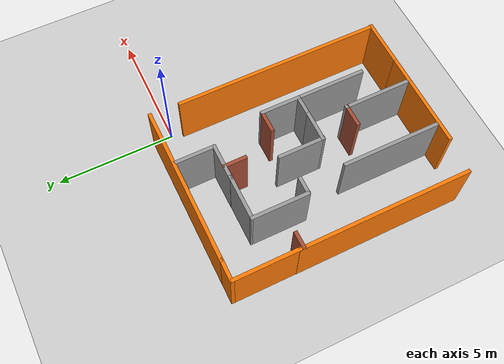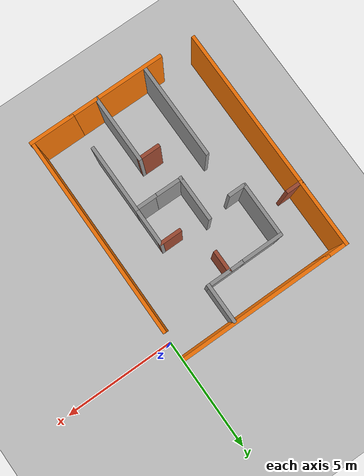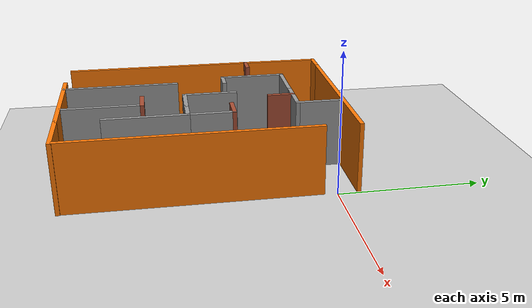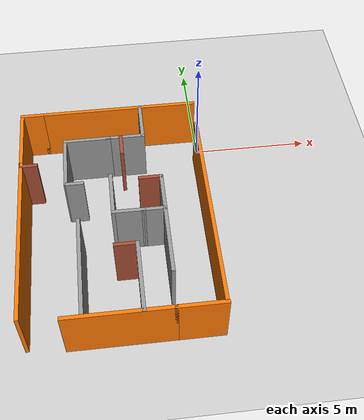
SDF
<sdf version="1.7">
 <world name="default">
  <light name="sun" type="directional">
   <pose>0 0 10 0 -0 0</pose>
   <diffuse>0.8 0.8 0.8 1</diffuse>
   <specular>0.2 0.2 0.2 1</specular>
   <attenuation>
    <range>1000</range>
    <constant>0.9</constant>
    <linear>0.01</linear>
    <quadratic>0.001</quadratic>
   </attenuation>
   <direction>-0.5 0.1 -0.9</direction>
   <spot><inner_angle>0</inner_angle><outer_angle>0</outer_angle><falloff>0</falloff></spot>
  </light>
  <model name="ground_plane">
   <static>1</static>
   <link name="link">
    <collision name="collision">
     <geometry><plane><normal>0 0 1</normal><size>100 100</size></plane></geometry>
     <surface><friction><ode><mu>100</mu><mu2>50</mu2></ode></friction></surface>
    </collision>
    <visual name="visual">
     <cast_shadows>0</cast_shadows>
     <geometry><plane><normal>0 0 1</normal><size>100 100</size></plane></geometry>
     <material>
      <script><uri>file://media/materials/scripts/gazebo.material</uri><name>Gazebo/Grey</name></script>
     </material>
    </visual>
   </link>
  </model>
  <gravity>0 0 -9.8</gravity>
  <magnetic_field>6e-06 2.3e-05 -4.2e-05</magnetic_field>
  <atmosphere type="adiabatic"/>
  <physics type="ode">
   <max_step_size>0.001</max_step_size>
   <real_time_factor>1</real_time_factor>
   <real_time_update_rate>1000</real_time_update_rate>
  </physics>
  <scene><ambient>0.4 0.4 0.4 1</ambient><background>0.7 0.7 0.7 1</background><shadows>1</shadows></scene>
  <spherical_coordinates>
   <surface_model>EARTH_WGS84</surface_model>
   <latitude_deg>0</latitude_deg>
   <longitude_deg>0</longitude_deg>
   <elevation>0</elevation>
   <heading_deg>0</heading_deg>
  </spherical_coordinates>
  <model name="Maze">
   <pose>-3.84878 -4.24266 0 0 -0 0</pose>
   <link name="Wall_21">
    <collision name="Wall_21_Collision">
     <geometry><box><size>4.25 0.15 2.5</size></box></geometry>
     <pose>0 0 1.25 0 -0 0</pose>
    </collision>
    <visual name="Wall_21_Visual">
     <pose>0 0 1.25 0 -0 0</pose>
     <geometry><box><size>4.25 0.15 2.5</size></box></geometry>
     <material>
      <script><uri>file://media/materials/scripts/gazebo.material</uri><name>Gazebo/Grey</name></script>
      <ambient>0.996078 0.47451 0.0196078 1</ambient>
     </material>
     <meta><layer>0</layer></meta>
    </visual>
    <pose>-0.166584 -4.99211 0 0 -0 0</pose>
   </link>
   <link name="Wall_23">
    <collision name="Wall_23_Collision">
     <geometry><box><size>4.25 0.15 2.5</size></box></geometry>
     <pose>0 0 1.25 0 -0 0</pose>
    </collision>
    <visual name="Wall_23_Visual">
     <pose>0 0 1.25 0 -0 0</pose>
     <geometry><box><size>4.25 0.15 2.5</size></box></geometry>
     <material>
      <script><uri>file://media/materials/scripts/gazebo.material</uri><name>Gazebo/Grey</name></script>
      <ambient>0 0 0 1</ambient>
     </material>
     <meta><layer>0</layer></meta>
    </visual>
    <pose>-1.47697 -2.88891 0 0 -0 1.5708</pose>
   </link>
   <link name="Wall_25">
    <collision name="Wall_25_Collision">
     <geometry><box><size>7.25 0.15 2.5</size></box></geometry>
     <pose>0 0 1.25 0 -0 0</pose>
    </collision>
    <visual name="Wall_25_Visual">
     <pose>0 0 1.25 0 -0 0</pose>
     <geometry><box><size>7.25 0.15 2.5</size></box></geometry>
     <material>
      <script><uri>file://media/materials/scripts/gazebo.material</uri><name>Gazebo/Grey</name></script>
      <ambient>0.996078 0.47451 0.0196078 1</ambient>
     </material>
     <meta><layer>0</layer></meta>
    </visual>
    <pose>-3.73341 -1.28759 0 0 -0 1.5708</pose>
   </link>
   <link name="Wall_30">
    <collision name="Wall_30_Collision">
     <geometry><box><size>0.75 0.15 2.5</size></box></geometry>
     <pose>0 0 1.25 0 -0 0</pose>
    </collision>
    <visual name="Wall_30_Visual">
     <pose>0 0 1.25 0 -0 0</pose>
     <geometry><box><size>0.75 0.15 2.5</size></box></geometry>
     <material>
      <script><uri>file://media/materials/scripts/gazebo.material</uri><name>Gazebo/Grey</name></script>
      <ambient>0 0 0 1</ambient>
     </material>
     <meta><layer>0</layer></meta>
    </visual>
    <pose>-1.56741 0.99221 0 0 -0 0</pose>
   </link>
   <link name="Wall_34">
    <collision name="Wall_34_Collision">
     <geometry><box><size>1.3428 0.15 2.5</size></box></geometry>
     <pose>0 0 1.25 0 -0 0</pose>
    </collision>
    <visual name="Wall_34_Visual">
     <pose>0 0 1.25 0 -0 0</pose>
     <geometry><box><size>1.3428 0.15 2.5</size></box></geometry>
     <material>
      <script><uri>file://media/materials/scripts/gazebo.material</uri><name>Gazebo/Grey</name></script>
      <ambient>0 0 0 1</ambient>
     </material>
     <meta><layer>0</layer></meta>
    </visual>
    <pose>0.487086 -0.59755 0 0 -0 -0.009643</pose>
   </link>
   <link name="Wall_35">
    <collision name="Wall_35_Collision">
     <geometry><box><size>1 0.15 2.5</size></box></geometry>
     <pose>0 0 1.25 0 -0 0</pose>
    </collision>
    <visual name="Wall_35_Visual">
     <pose>0 0 1.25 0 -0 0</pose>
     <geometry><box><size>1 0.15 2.5</size></box></geometry>
     <material>
      <script><uri>file://media/materials/scripts/gazebo.material</uri><name>Gazebo/Grey</name></script>
      <ambient>0 0 0 1</ambient>
     </material>
     <meta><layer>0</layer></meta>
    </visual>
    <pose>1.50837 -0.6033 0 0 -0 0</pose>
   </link>
   <link name="Wall_36">
    <collision name="Wall_36_Collision">
     <geometry><box><size>1.75 0.15 2.5</size></box></geometry>
     <pose>0 0 1.25 0 -0 0</pose>
    </collision>
    <visual name="Wall_36_Visual">
     <pose>0 0 1.25 0 -0 0</pose>
     <geometry><box><size>1.75 0.15 2.5</size></box></geometry>
     <material>
      <script><uri>file://media/materials/scripts/gazebo.material</uri><name>Gazebo/Grey</name></script>
      <ambient>0 0 0 1</ambient>
     </material>
     <meta><layer>0</layer></meta>
    </visual>
    <pose>1.93337 0.1967 0 0 -0 1.5708</pose>
   </link>
   <link name="Wall_37">
    <collision name="Wall_37_Collision">
     <geometry><box><size>1 0.15 2.5</size></box></geometry>
     <pose>0 0 1.25 0 -0 0</pose>
    </collision>
    <visual name="Wall_37_Visual">
     <pose>0 0 1.25 0 -0 0</pose>
     <geometry><box><size>1 0.15 2.5</size></box></geometry>
     <material>
      <script><uri>file://media/materials/scripts/gazebo.material</uri><name>Gazebo/Bricks</name></script>
      <ambient>0.435294 0.796078 0.67451 1</ambient>
     </material>
     <meta><layer>0</layer></meta>
    </visual>
    <pose>1.50837 0.9967 0 0 -0 3.14159</pose>
   </link>
   <link name="Wall_39">
    <collision name="Wall_39_Collision">
     <geometry><box><size>3 0.15 2.5</size></box></geometry>
     <pose>0 0 1.25 0 -0 0</pose>
    </collision>
    <visual name="Wall_39_Visual">
     <pose>0 0 1.25 0 -0 0</pose>
     <geometry><box><size>3 0.15 2.5</size></box></geometry>
     <material>
      <script><uri>file://media/materials/scripts/gazebo.material</uri><name>Gazebo/Grey</name></script>
      <ambient>0 0 0 1</ambient>
     </material>
     <meta><layer>0</layer></meta>
    </visual>
    <pose>1.93337 -2.0283 0 0 -0 -1.5708</pose>
   </link>
   <link name="Wall_41">
    <collision name="Wall_41_Collision">
     <geometry><box><size>3 0.15 2.5</size></box></geometry>
     <pose>0 0 1.25 0 -0 0</pose>
    </collision>
    <visual name="Wall_41_Visual">
     <pose>0 0 1.25 0 -0 0</pose>
     <geometry><box><size>3 0.15 2.5</size></box></geometry>
     <material>
      <script><uri>file://media/materials/scripts/gazebo.material</uri><name>Gazebo/Grey</name></script>
      <ambient>0 0 0 1</ambient>
     </material>
     <meta><layer>0</layer></meta>
    </visual>
    <pose>0.727679 -3.55281 0 0 -0 1.5708</pose>
   </link>
   <link name="Wall_43">
    <collision name="Wall_43_Collision">
     <geometry><box><size>1 0.15 2.5</size></box></geometry>
     <pose>0 0 1.25 0 -0 0</pose>
    </collision>
    <visual name="Wall_43_Visual">
     <pose>0 0 1.25 0 -0 0</pose>
     <geometry><box><size>1 0.15 2.5</size></box></geometry>
     <material>
      <script><uri>file://media/materials/scripts/gazebo.material</uri><name>Gazebo/Bricks</name></script>
      <ambient>0.435294 0.796078 0.67451 1</ambient>
     </material>
     <meta><layer>0</layer></meta>
    </visual>
    <pose>0.302679 -2.12782 0 0 -0 3.14159</pose>
   </link>
   <link name="Wall_46">
    <collision name="Wall_46_Collision">
     <geometry><box><size>1.64061 0.15 2.5</size></box></geometry>
     <pose>0 0 1.25 0 -0 0</pose>
    </collision>
    <visual name="Wall_46_Visual">
     <pose>0 0 1.25 0 -0 0</pose>
     <geometry><box><size>1.64061 0.15 2.5</size></box></geometry>
     <material>
      <script><uri>file://media/materials/scripts/gazebo.material</uri><name>Gazebo/Grey</name></script>
      <ambient>0 0 0 1</ambient>
     </material>
     <meta><layer>0</layer></meta>
    </visual>
    <pose>0.633461 3.31645 0 0 -0 0</pose>
   </link>
   <link name="Wall_52">
    <collision name="Wall_52_Collision">
     <geometry><box><size>2.44702 0.15 2.5</size></box></geometry>
     <pose>0 0 1.25 0 -0 0</pose>
    </collision>
    <visual name="Wall_52_Visual">
     <pose>0 0 1.25 0 -0 0</pose>
     <geometry><box><size>2.44702 0.15 2.5</size></box></geometry>
     <material>
      <script><uri>file://media/materials/scripts/gazebo.material</uri><name>Gazebo/Grey</name></script>
      <ambient>0 0 0 1</ambient>
     </material>
     <meta><layer>0</layer></meta>
    </visual>
    <pose>-1.91791 2.16081 0 0 -0 1.56844</pose>
   </link>
   <link name="Wall_53">
    <collision name="Wall_53_Collision">
     <geometry><box><size>2 0.15 2.5</size></box></geometry>
     <pose>0 0 1.25 0 -0 0</pose>
    </collision>
    <visual name="Wall_53_Visual">
     <pose>0 0 1.25 0 -0 0</pose>
     <geometry><box><size>2 0.15 2.5</size></box></geometry>
     <material>
      <script><uri>file://media/materials/scripts/gazebo.material</uri><name>Gazebo/Grey</name></script>
      <ambient>0 0 0 1</ambient>
     </material>
     <meta><layer>0</layer></meta>
    </visual>
    <pose>-0.99021 3.30921 0 0 -0 0</pose>
   </link>
   <link name="Wall_61">
    <collision name="Wall_61_Collision">
     <geometry><box><size>1 0.15 2.5</size></box></geometry>
     <pose>0 0 1.25 0 -0 0</pose>
    </collision>
    <visual name="Wall_61_Visual">
     <pose>0 0 1.25 0 -0 0</pose>
     <geometry><box><size>1 0.15 2.5</size></box></geometry>
     <material>
      <script><uri>file://media/materials/scripts/gazebo.material</uri><name>Gazebo/Grey</name></script>
      <ambient>0.996078 0.47451 0.0196078 1</ambient>
     </material>
     <meta><layer>0</layer></meta>
    </visual>
    <pose>-3.30144 4.99211 0 0 -0 3.14159</pose>
   </link>
   <link name="Wall_63">
    <collision name="Wall_63_Collision">
     <geometry><box><size>3 0.15 2.5</size></box></geometry>
     <pose>0 0 1.25 0 -0 0</pose>
    </collision>
    <visual name="Wall_63_Visual">
     <pose>0 0 1.25 0 -0 0</pose>
     <geometry><box><size>3 0.15 2.5</size></box></geometry>
     <material>
      <script><uri>file://media/materials/scripts/gazebo.material</uri><name>Gazebo/Grey</name></script>
      <ambient>0.996078 0.47451 0.0196078 1</ambient>
     </material>
     <meta><layer>0</layer></meta>
    </visual>
    <pose>-3.72644 3.56711 0 0 -0 -1.5708</pose>
   </link>
   <link name="Wall_65">
    <collision name="Wall_65_Collision">
     <geometry><box><size>6.75 0.15 2.5</size></box></geometry>
     <pose>0 0 1.25 0 -0 0</pose>
    </collision>
    <visual name="Wall_65_Visual">
     <pose>0 0 1.25 0 -0 0</pose>
     <geometry><box><size>6.75 0.15 2.5</size></box></geometry>
     <material>
      <script><uri>file://media/materials/scripts/gazebo.material</uri><name>Gazebo/Grey</name></script>
      <ambient>0.996078 0.47451 0.0196078 1</ambient>
     </material>
     <meta><layer>0</layer></meta>
    </visual>
    <pose>0.42356 4.99211 0 0 -0 0</pose>
   </link>
   <link name="Wall_67">
    <collision name="Wall_67_Collision">
     <geometry><box><size>8.75 0.15 2.5</size></box></geometry>
     <pose>0 0 1.25 0 -0 0</pose>
    </collision>
    <visual name="Wall_67_Visual">
     <pose>0 0 1.25 0 -0 0</pose>
     <geometry><box><size>8.75 0.15 2.5</size></box></geometry>
     <material>
      <script><uri>file://media/materials/scripts/gazebo.material</uri><name>Gazebo/Grey</name></script>
      <ambient>0.996078 0.47451 0.0196078 1</ambient>
     </material>
     <meta><layer>0</layer></meta>
    </visual>
    <pose>3.70855 -0.575644 0 0 -0 -1.5708</pose>
   </link>
   <link name="Wall_69">
    <collision name="Wall_69_Collision">
     <geometry><box><size>2 0.15 2.5</size></box></geometry>
     <pose>0 0 1.25 0 -0 0</pose>
    </collision>
    <visual name="Wall_69_Visual">
     <pose>0 0 1.25 0 -0 0</pose>
     <geometry><box><size>2 0.15 2.5</size></box></geometry>
     <material>
      <script><uri>file://media/materials/scripts/gazebo.material</uri><name>Gazebo/Grey</name></script>
      <ambient>0.996078 0.47451 0.0196078 1</ambient>
     </material>
     <meta><layer>0</layer></meta>
    </visual>
    <pose>2.80842 -4.99211 0 0 -0 0</pose>
   </link>
   <link name="Wall_71">
    <collision name="Wall_71_Collision">
     <geometry><box><size>0.75 0.15 2.5</size></box></geometry>
     <pose>0 0 1.25 0 -0 0</pose>
    </collision>
    <visual name="Wall_71_Visual">
     <pose>0 0 1.25 0 -0 0</pose>
     <geometry><box><size>0.75 0.15 2.5</size></box></geometry>
     <material>
      <script><uri>file://media/materials/scripts/gazebo.material</uri><name>Gazebo/Bricks</name></script>
      <ambient>0 0 0 1</ambient>
     </material>
     <meta><layer>0</layer></meta>
    </visual>
    <pose>-3.42644 2.14211 0 0 -0 0</pose>
   </link>
   <link name="Wall_73">
    <collision name="Wall_73_Collision">
     <geometry><box><size>2 0.15 2.5</size></box></geometry>
     <pose>0 0 1.25 0 -0 0</pose>
    </collision>
    <visual name="Wall_73_Visual">
     <pose>0 0 1.25 0 -0 0</pose>
     <geometry><box><size>2 0.15 2.5</size></box></geometry>
     <material>
      <script><uri>file://media/materials/scripts/gazebo.material</uri><name>Gazebo/Grey</name></script>
      <ambient>0 0 0 1</ambient>
     </material>
     <meta><layer>0</layer></meta>
    </visual>
    <pose>-0.109202 0.3217 0 0 -0 1.5708</pose>
   </link>
   <link name="Wall_79">
    <collision name="Wall_79_Collision">
     <geometry><box><size>1.75 0.15 2.5</size></box></geometry>
     <pose>0 0 1.25 0 -0 0</pose>
    </collision>
    <visual name="Wall_79_Visual">
     <pose>0 0 1.25 0 -0 0</pose>
     <geometry><box><size>1.75 0.15 2.5</size></box></geometry>
     <material>
      <script><uri>file://media/materials/scripts/gazebo.material</uri><name>Gazebo/Grey</name></script>
      <ambient>0 0 0 1</ambient>
     </material>
     <meta><layer>0</layer></meta>
    </visual>
    <pose>1.37874 4.11646 0 0 -0 1.5708</pose>
   </link>
   <link name="Wall_81">
    <collision name="Wall_81_Collision">
     <geometry><box><size>1 0.15 2.5</size></box></geometry>
     <pose>0 0 1.25 0 -0 0</pose>
    </collision>
    <visual name="Wall_81_Visual">
     <pose>0 0 1.25 0 -0 0</pose>
     <geometry><box><size>1 0.15 2.5</size></box></geometry>
     <material>
      <script><uri>file://media/materials/scripts/gazebo.material</uri><name>Gazebo/Bricks</name></script>
      <ambient>0.435294 0.796078 0.67451 1</ambient>
     </material>
     <meta><layer>0</layer></meta>
    </visual>
    <pose>0.438493 2.88286 0 0 -0 -1.5708</pose>
   </link>
   <static>1</static>
  </model>
 </world>
</sdf>
